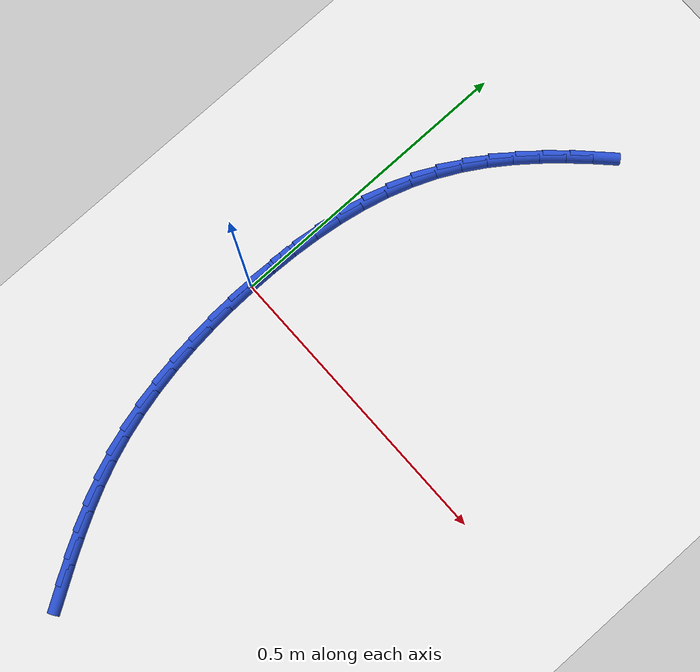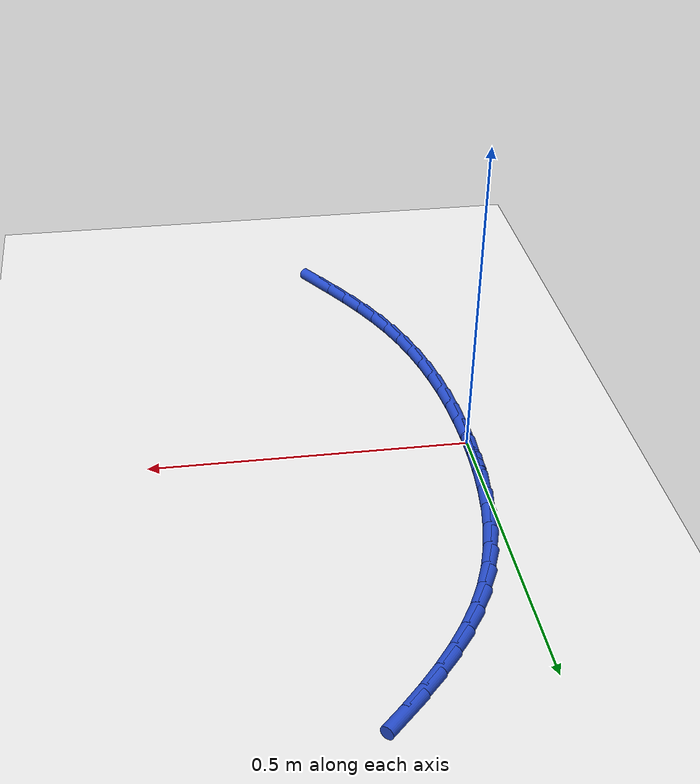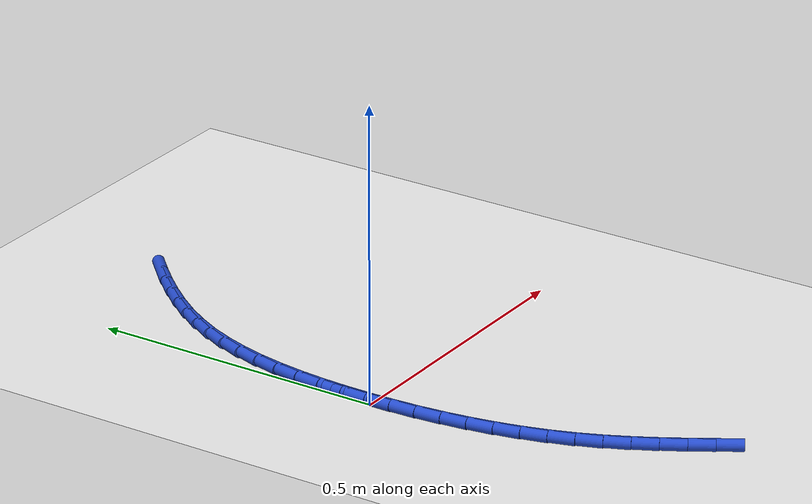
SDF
<sdf version="1.6">
 <world name="default">
  <model name="ground_plane">
   <static>1</static>
   <link name="link">
    <collision name="collision">
     <geometry><plane><normal>0 0 1</normal><size>100 100</size></plane></geometry>
     <surface><friction><ode><mu>100</mu><mu2>50</mu2></ode></friction></surface>
    </collision>
    <visual name="visual">
     <cast_shadows>0</cast_shadows>
     <geometry><plane><normal>0 0 1</normal><size>100 100</size></plane></geometry>
     <material>
      <script><uri>file://media/materials/scripts/gazebo.material</uri><name>Gazebo/WhiteGlow</name></script>
     </material>
    </visual>
   </link>
  </model>
  <model name="line">
   <link name="link_0">
    <pose>4.0766001685454967e-17 7.632783294297951e-17 0.01 0 1.57 1.5652851152833045</pose>
    <collision name="collision">
     <geometry><cylinder><radius>0.01</radius><length>0.08</length></cylinder></geometry>
    </collision>
    <visual name="visual">
     <material>
      <script><name>Gazebo/Blue</name><uri>file://media/materials/scripts/gazebo.material</uri></script>
     </material>
     <geometry><cylinder><radius>0.01</radius><length>0.08</length></cylinder></geometry>
    </visual>
   </link>
   <link name="link_1">
    <pose>0.0002442823026844684 0.04432416156290146 0.01 0 1.57 1.5285700825561106</pose>
    <collision name="collision">
     <geometry><cylinder><radius>0.01</radius><length>0.08</length></cylinder></geometry>
    </collision>
    <visual name="visual">
     <material>
      <script><name>Gazebo/Blue</name><uri>file://media/materials/scripts/gazebo.material</uri></script>
     </material>
     <geometry><cylinder><radius>0.01</radius><length>0.08</length></cylinder></geometry>
    </visual>
   </link>
   <link name="link_2">
    <pose>0.0021137997442603595 0.0885716714209829 0.01 0 1.57 1.4867115894773664</pose>
    <collision name="collision">
     <geometry><cylinder><radius>0.01</radius><length>0.08</length></cylinder></geometry>
    </collision>
    <visual name="visual">
     <material>
      <script><name>Gazebo/Blue</name><uri>file://media/materials/scripts/gazebo.material</uri></script>
     </material>
     <geometry><cylinder><radius>0.01</radius><length>0.08</length></cylinder></geometry>
    </visual>
   </link>
   <link name="link_3">
    <pose>0.005817198089762839 0.13251146800237734 0.01 0 1.57 1.4391703211880926</pose>
    <collision name="collision">
     <geometry><cylinder><radius>0.01</radius><length>0.08</length></cylinder></geometry>
    </collision>
    <visual name="visual">
     <material>
      <script><name>Gazebo/Blue</name><uri>file://media/materials/scripts/gazebo.material</uri></script>
     </material>
     <geometry><cylinder><radius>0.01</radius><length>0.08</length></cylinder></geometry>
    </visual>
   </link>
   <link name="link_4">
    <pose>0.011563123104227031 0.17591248973521792 0.01 0 1.57 1.385363397241208</pose>
    <collision name="collision">
     <geometry><cylinder><radius>0.01</radius><length>0.08</length></cylinder></geometry>
    </collision>
    <visual name="visual">
     <material>
      <script><name>Gazebo/Blue</name><uri>file://media/materials/scripts/gazebo.material</uri></script>
     </material>
     <geometry><cylinder><radius>0.01</radius><length>0.08</length></cylinder></geometry>
    </visual>
   </link>
   <link name="link_5">
    <pose>0.01956022055268805 0.21854367504763758 0.01 0 1.57 1.324702411401661</pose>
    <collision name="collision">
     <geometry><cylinder><radius>0.01</radius><length>0.08</length></cylinder></geometry>
    </collision>
    <visual name="visual">
     <material>
      <script><name>Gazebo/Blue</name><uri>file://media/materials/scripts/gazebo.material</uri></script>
     </material>
     <geometry><cylinder><radius>0.01</radius><length>0.08</length></cylinder></geometry>
    </visual>
   </link>
   <link name="link_6">
    <pose>0.030017136200181007 0.2601739623677694 0.01 0 1.57 1.2566557070892985</pose>
    <collision name="collision">
     <geometry><cylinder><radius>0.01</radius><length>0.08</length></cylinder></geometry>
    </collision>
    <visual name="visual">
     <material>
      <script><name>Gazebo/Blue</name><uri>file://media/materials/scripts/gazebo.material</uri></script>
     </material>
     <geometry><cylinder><radius>0.01</radius><length>0.08</length></cylinder></geometry>
    </visual>
   </link>
   <link name="link_7">
    <pose>0.043142515811741056 0.3005722901237463 0.01 0 1.57 1.1808415843914173</pose>
    <collision name="collision">
     <geometry><cylinder><radius>0.01</radius><length>0.08</length></cylinder></geometry>
    </collision>
    <visual name="visual">
     <material>
      <script><name>Gazebo/Blue</name><uri>file://media/materials/scripts/gazebo.material</uri></script>
     </material>
     <geometry><cylinder><radius>0.01</radius><length>0.08</length></cylinder></geometry>
    </visual>
   </link>
   <link name="link_8">
    <pose>0.059145005152403285 0.3395075967437015 0.01 0 1.57 1.099297835576982</pose>
    <collision name="collision">
     <geometry><cylinder><radius>0.01</radius><length>0.08</length></cylinder></geometry>
    </collision>
    <visual name="visual">
     <material>
      <script><name>Gazebo/Blue</name><uri>file://media/materials/scripts/gazebo.material</uri></script>
     </material>
     <geometry><cylinder><radius>0.01</radius><length>0.08</length></cylinder></geometry>
    </visual>
   </link>
   <link name="link_9">
    <pose>0.07816109508705557 0.37680483596662545 0.01 0 1.57 1.0230116683269173</pose>
    <collision name="collision">
     <geometry><cylinder><radius>0.01</radius><length>0.08</length></cylinder></geometry>
    </collision>
    <visual name="visual">
     <material>
      <script><name>Gazebo/Blue</name><uri>file://media/materials/scripts/gazebo.material</uri></script>
     </material>
     <geometry><cylinder><radius>0.01</radius><length>0.08</length></cylinder></geometry>
    </visual>
   </link>
   <link name="link_10">
    <pose>0.09997528811176017 0.4125622172335854 0.01 0 1.57 0.9559776037493904</pose>
    <collision name="collision">
     <geometry><cylinder><radius>0.01</radius><length>0.08</length></cylinder></geometry>
    </collision>
    <visual name="visual">
     <material>
      <script><name>Gazebo/Blue</name><uri>file://media/materials/scripts/gazebo.material</uri></script>
     </material>
     <geometry><cylinder><radius>0.01</radius><length>0.08</length></cylinder></geometry>
    </visual>
   </link>
   <link name="link_11">
    <pose>0.12426491600606802 0.446961148784177 0.01 0 1.57 0.8985410213835947</pose>
    <collision name="collision">
     <geometry><cylinder><radius>0.01</radius><length>0.08</length></cylinder></geometry>
    </collision>
    <visual name="visual">
     <material>
      <script><name>Gazebo/Blue</name><uri>file://media/materials/scripts/gazebo.material</uri></script>
     </material>
     <geometry><cylinder><radius>0.01</radius><length>0.08</length></cylinder></geometry>
    </visual>
   </link>
   <link name="link_12">
    <pose>0.1507072850935169 0.48018305862001487 0.01 0 1.57 0.8506604310701336</pose>
    <collision name="collision">
     <geometry><cylinder><radius>0.01</radius><length>0.08</length></cylinder></geometry>
    </collision>
    <visual name="visual">
     <material>
      <script><name>Gazebo/Blue</name><uri>file://media/materials/scripts/gazebo.material</uri></script>
     </material>
     <geometry><cylinder><radius>0.01</radius><length>0.08</length></cylinder></geometry>
    </visual>
   </link>
   <link name="link_13">
    <pose>0.17897970169764468 0.5124093747427135 0.01 0 1.57 0.81206823507241</pose>
    <collision name="collision">
     <geometry><cylinder><radius>0.01</radius><length>0.08</length></cylinder></geometry>
    </collision>
    <visual name="visual">
     <material>
      <script><name>Gazebo/Blue</name><uri>file://media/materials/scripts/gazebo.material</uri></script>
     </material>
     <geometry><cylinder><radius>0.01</radius><length>0.08</length></cylinder></geometry>
    </visual>
   </link>
   <link name="link_14">
    <pose>0.20875947214198903 0.5438215251538879 0.01 0 1.57 0.7824016321945504</pose>
    <collision name="collision">
     <geometry><cylinder><radius>0.01</radius><length>0.08</length></cylinder></geometry>
    </collision>
    <visual name="visual">
     <material>
      <script><name>Gazebo/Blue</name><uri>file://media/materials/scripts/gazebo.material</uri></script>
     </material>
     <geometry><cylinder><radius>0.01</radius><length>0.08</length></cylinder></geometry>
    </visual>
   </link>
   <link name="link_167">
    <pose>0.15973447655044354 -0.5269289790678284 0.01 0 1.57 -1.0139711100065385</pose>
    <collision name="collision">
     <geometry><cylinder><radius>0.01</radius><length>0.08</length></cylinder></geometry>
    </collision>
    <visual name="visual">
     <material>
      <script><name>Gazebo/Blue</name><uri>file://media/materials/scripts/gazebo.material</uri></script>
     </material>
     <geometry><cylinder><radius>0.01</radius><length>0.08</length></cylinder></geometry>
    </visual>
   </link>
   <link name="link_168">
    <pose>0.1369293024483104 -0.4902962576333764 0.01 0 1.57 -1.0367031638609032</pose>
    <collision name="collision">
     <geometry><cylinder><radius>0.01</radius><length>0.08</length></cylinder></geometry>
    </collision>
    <visual name="visual">
     <material>
      <script><name>Gazebo/Blue</name><uri>file://media/materials/scripts/gazebo.material</uri></script>
     </material>
     <geometry><cylinder><radius>0.01</radius><length>0.08</length></cylinder></geometry>
    </visual>
   </link>
   <link name="link_169">
    <pose>0.11513966627365224 -0.45345387954507116 0.01 0 1.57 -1.0693742551167045</pose>
    <collision name="collision">
     <geometry><cylinder><radius>0.01</radius><length>0.08</length></cylinder></geometry>
    </collision>
    <visual name="visual">
     <material>
      <script><name>Gazebo/Blue</name><uri>file://media/materials/scripts/gazebo.material</uri></script>
     </material>
     <geometry><cylinder><radius>0.01</radius><length>0.08</length></cylinder></geometry>
    </visual>
   </link>
   <link name="link_170">
    <pose>0.09470667837867539 -0.4161776365633064 0.01 0 1.57 -1.1120518355336286</pose>
    <collision name="collision">
     <geometry><cylinder><radius>0.01</radius><length>0.08</length></cylinder></geometry>
    </collision>
    <visual name="visual">
     <material>
      <script><name>Gazebo/Blue</name><uri>file://media/materials/scripts/gazebo.material</uri></script>
     </material>
     <geometry><cylinder><radius>0.01</radius><length>0.08</length></cylinder></geometry>
    </visual>
   </link>
   <link name="link_171">
    <pose>0.07597144911558731 -0.3782433204484778 0.01 0 1.57 -1.164584078113533</pose>
    <collision name="collision">
     <geometry><cylinder><radius>0.01</radius><length>0.08</length></cylinder></geometry>
    </collision>
    <visual name="visual">
     <material>
      <script><name>Gazebo/Blue</name><uri>file://media/materials/scripts/gazebo.material</uri></script>
     </material>
     <geometry><cylinder><radius>0.01</radius><length>0.08</length></cylinder></geometry>
    </visual>
   </link>
   <link name="link_172">
    <pose>0.05927506690581486 -0.33942673926972544 0.01 0 1.57 -1.2238819991543417</pose>
    <collision name="collision">
     <geometry><cylinder><radius>0.01</radius><length>0.08</length></cylinder></geometry>
    </collision>
    <visual name="visual">
     <material>
      <script><name>Gazebo/Blue</name><uri>file://media/materials/scripts/gazebo.material</uri></script>
     </material>
     <geometry><cylinder><radius>0.01</radius><length>0.08</length></cylinder></geometry>
    </visual>
   </link>
   <link name="link_173">
    <pose>0.04486629081400575 -0.29957236149750976 0.01 0 1.57 -1.2809360530505438</pose>
    <collision name="collision">
     <geometry><cylinder><radius>0.01</radius><length>0.08</length></cylinder></geometry>
    </collision>
    <visual name="visual">
     <material>
      <script><name>Gazebo/Blue</name><uri>file://media/materials/scripts/gazebo.material</uri></script>
     </material>
     <geometry><cylinder><radius>0.01</radius><length>0.08</length></cylinder></geometry>
    </visual>
   </link>
   <link name="link_174">
    <pose>0.03269063606408699 -0.2587501618175128 0.01 0 1.57 -1.3339479528394904</pose>
    <collision name="collision">
     <geometry><cylinder><radius>0.01</radius><length>0.08</length></cylinder></geometry>
    </collision>
    <visual name="visual">
     <material>
      <script><name>Gazebo/Blue</name><uri>file://media/materials/scripts/gazebo.material</uri></script>
     </material>
     <geometry><cylinder><radius>0.01</radius><length>0.08</length></cylinder></geometry>
    </visual>
   </link>
   <link name="link_175">
    <pose>0.022631455232053743 -0.21707634194983966 0.01 0 1.57 -1.3829979889365178</pose>
    <collision name="collision">
     <geometry><cylinder><radius>0.01</radius><length>0.08</length></cylinder></geometry>
    </collision>
    <visual name="visual">
     <material>
      <script><name>Gazebo/Blue</name><uri>file://media/materials/scripts/gazebo.material</uri></script>
     </material>
     <geometry><cylinder><radius>0.01</radius><length>0.08</length></cylinder></geometry>
    </visual>
   </link>
   <link name="link_176">
    <pose>0.014572100893901017 -0.17466710361459434 0.01 0 1.57 -1.4282330777229382</pose>
    <collision name="collision">
     <geometry><cylinder><radius>0.01</radius><length>0.08</length></cylinder></geometry>
    </collision>
    <visual name="visual">
     <material>
      <script><name>Gazebo/Blue</name><uri>file://media/materials/scripts/gazebo.material</uri></script>
     </material>
     <geometry><cylinder><radius>0.01</radius><length>0.08</length></cylinder></geometry>
    </visual>
   </link>
   <link name="link_177">
    <pose>0.008395925625624249 -0.13163864853188334 0.01 0 1.57 -1.4698428561900878</pose>
    <collision name="collision">
     <geometry><cylinder><radius>0.01</radius><length>0.08</length></cylinder></geometry>
    </collision>
    <visual name="visual">
     <material>
      <script><name>Gazebo/Blue</name><uri>file://media/materials/scripts/gazebo.material</uri></script>
     </material>
     <geometry><cylinder><radius>0.01</radius><length>0.08</length></cylinder></geometry>
    </visual>
   </link>
   <link name="link_178">
    <pose>0.0039862820032184115 -0.08810717842181076 0.01 0 1.57 -1.5080403331448646</pose>
    <collision name="collision">
     <geometry><cylinder><radius>0.01</radius><length>0.08</length></cylinder></geometry>
    </collision>
    <visual name="visual">
     <material>
      <script><name>Gazebo/Blue</name><uri>file://media/materials/scripts/gazebo.material</uri></script>
     </material>
     <geometry><cylinder><radius>0.01</radius><length>0.08</length></cylinder></geometry>
    </visual>
   </link>
   <link name="link_179">
    <pose>0.0012265226026786343 -0.0441888950044814 0.01 0 1.57 -1.5430470976986812</pose>
    <collision name="collision">
     <geometry><cylinder><radius>0.01</radius><length>0.08</length></cylinder></geometry>
    </collision>
    <visual name="visual">
     <material>
      <script><name>Gazebo/Blue</name><uri>file://media/materials/scripts/gazebo.material</uri></script>
     </material>
     <geometry><cylinder><radius>0.01</radius><length>0.08</length></cylinder></geometry>
    </visual>
   </link>
   <link name="link_180">
    <pose>5.377642775528102e-17 -2.0816681711721685e-16 0.01 0 1.57 1.5665100967141041</pose>
    <collision name="collision">
     <geometry><cylinder><radius>0.01</radius><length>0.08</length></cylinder></geometry>
    </collision>
    <visual name="visual">
     <material>
      <script><name>Gazebo/Blue</name><uri>file://media/materials/scripts/gazebo.material</uri></script>
     </material>
     <geometry><cylinder><radius>0.01</radius><length>0.08</length></cylinder></geometry>
    </visual>
   </link>
   <link name="link_181">
    <pose>0.0001900667711778048 0.044343304871528016 0.01 0 1.57 1.5665100967141037</pose>
    <collision name="collision">
     <geometry><cylinder><radius>0.01</radius><length>0.08</length></cylinder></geometry>
    </collision>
    <visual name="visual">
     <material>
      <script><name>Gazebo/Blue</name><uri>file://media/materials/scripts/gazebo.material</uri></script>
     </material>
     <geometry><cylinder><radius>0.01</radius><length>0.08</length></cylinder></geometry>
    </visual>
   </link>
  </model>
 </world>
</sdf>
